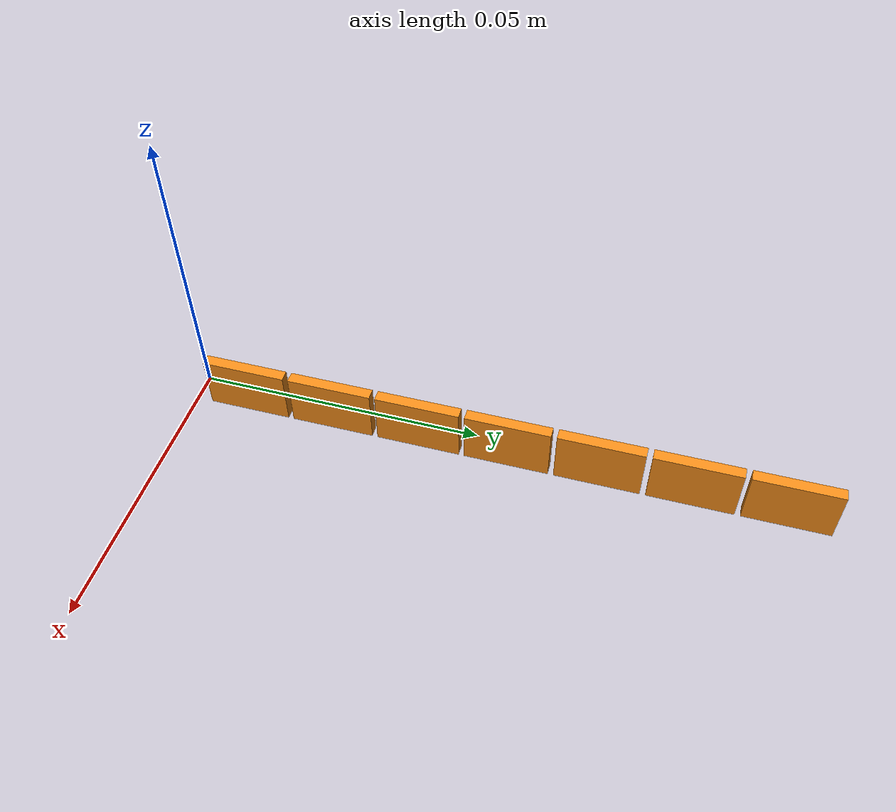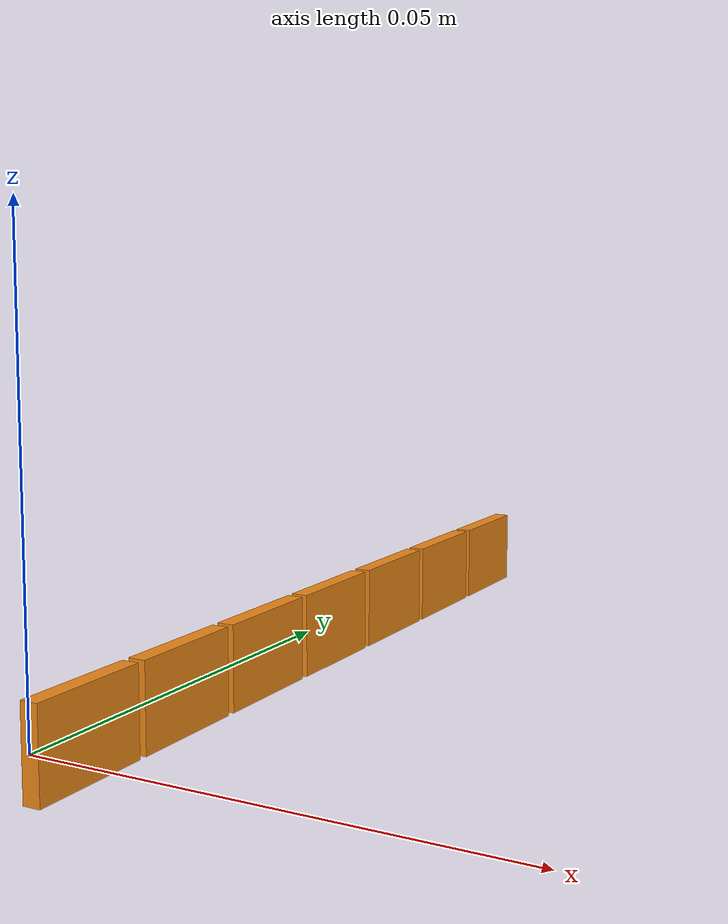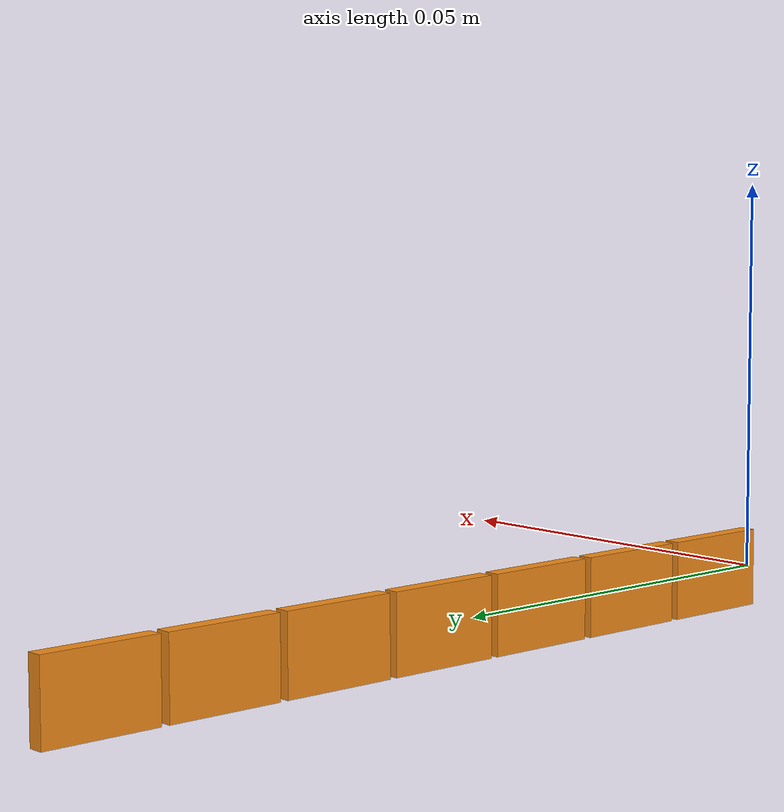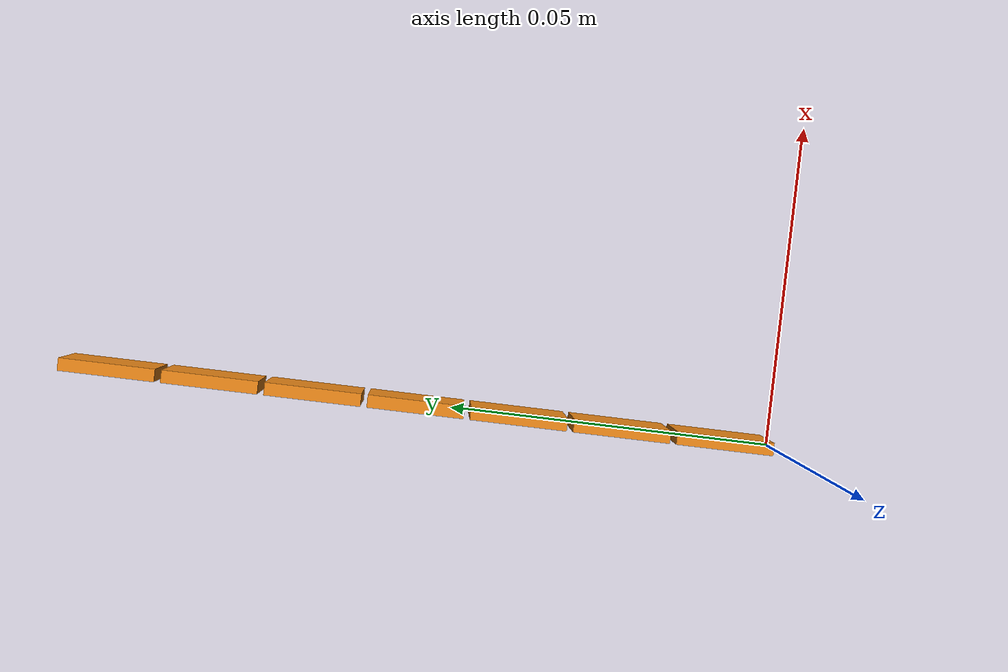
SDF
<?xml version='1.0'?>
	<sdf version='1.6'>
	  <model name='rubber_rope'>
<!-- SEGMENT 0 -->
	<link name='link_hook_0'>
	  <gravity>false</gravity>
	  <pose frame=''>0 0.0 -0 0 -0 0</pose>
	  <inertial>
	    <mass>0.0001</mass>
	    <inertia>
	      <ixx>4e-11</ixx>
	      <ixy>0</ixy>
	      <ixz>0</ixz>
	      <iyy>4e-11</iyy>
	      <iyz>0</iyz>
	      <izz>4e-11</izz>
	    </inertia>
	    <pose frame=''>0 0 0 0 -0 0</pose>
	  </inertial>
	  <self_collide>0</self_collide>
	  <kinematic>0</kinematic>
	</link>
	<joint name='joint_pri_s0_h0' type='prismatic'>
	  <parent>link_hook_0</parent>
	  <child>link_segment_0</child>
	  <pose frame=''>0 0 0 0 -0 0</pose>
	  <axis>
	    <xyz>0 1 0</xyz>
	    <use_parent_model_frame>0</use_parent_model_frame>
	    <limit>
	      <lower>0</lower>
	      <upper>0.05</upper>
	      <effort>-1</effort>
	      <velocity>-1</velocity>
	    </limit>
	    <dynamics>
	      <spring_reference>0</spring_reference>
	      <spring_stiffness>12.0</spring_stiffness>
	      <damping>4.0</damping>
	      <friction>0</friction>
	    </dynamics>
	  </axis>
	  <physics>
	    <provide_feedback>true</provide_feedback>
	    <ode>
	      <implicit_spring_damper>true</implicit_spring_damper>
	      <limit>
	        <cfm>0</cfm>
	        <erp>0.2</erp>
	      </limit>
	      <suspension>
	        <cfm>0</cfm>
	        <erp>0.2</erp>
	      </suspension>
	    </ode>
	  </physics>
	</joint>
	<link name='link_segment_0'>
	  <pose frame=''>0 0.0075 -0 0 -0 0</pose>
	  <inertial>
	    <mass>0.0001</mass>
	    <inertia>
	      <ixx>2.9e-09</ixx>
	      <ixy>0</ixy>
	      <ixz>0</ixz>
	      <iyy>1.1e-09</iyy>
	      <iyz>0</iyz>
	      <izz>1.9e-09</izz>
	    </inertia>
	    <pose frame=''>0 0 0 0 -0 0</pose>
	  </inertial>
	  <self_collide>1</self_collide>
	  <kinematic>0</kinematic>
	  <visual name='visual'>
	    <pose frame=''>0 0 0 0 -0 0</pose>
	    <geometry>
	      <box>
	        <size>0.002 0.015 0.01</size>
	      </box>
	    </geometry>
	    <material>
	      <lighting>1</lighting>
	      <script>
	        <uri>file://media/materials/scripts/gazebo.material</uri>
	        <name>Gazebo/Orange</name>
	      </script>
	    </material>
	    <transparency>0</transparency>
	    <cast_shadows>1</cast_shadows>
	  </visual>
	  <collision name='collision'>
	    <laser_retro>0</laser_retro>
	    <max_contacts>10</max_contacts>
	    <pose frame=''>0 0 0 0 -0 0</pose>
	    <geometry>
	      <box>
	        <size>0.002 0.015 0.01</size>
	      </box>
	    </geometry>
	    <surface>
	      <friction>
	        <ode>
	          <mu>2</mu>
	          <mu2>2</mu2>
	          <fdir1>0 0 0</fdir1>
	          <slip1>0</slip1>
	          <slip2>0</slip2>
	        </ode>
	        <torsional>
	          <coefficient>1</coefficient>
	          <patch_radius>0</patch_radius>
	          <surface_radius>0</surface_radius>
	          <use_patch_radius>1</use_patch_radius>
	          <ode>
	            <slip>0</slip>
	          </ode>
	        </torsional>
	      </friction>
	      <bounce>
	        <restitution_coefficient>0</restitution_coefficient>
	        <threshold>1e+06</threshold>
	      </bounce>
	      <contact>
	        <collide_without_contact>0</collide_without_contact>
	        <collide_without_contact_bitmask>1</collide_without_contact_bitmask>
	        <collide_bitmask>1</collide_bitmask>
	        <ode>
	          <soft_cfm>0</soft_cfm>
	          <soft_erp>0.2</soft_erp>
	          <kp>1e+13</kp>
	          <kd>1</kd>
	          <max_vel>0.01</max_vel>
	          <min_depth>0</min_depth>
	        </ode>
	        <bullet>
	          <split_impulse>1</split_impulse>
	          <split_impulse_penetration_threshold>-0.01</split_impulse_penetration_threshold>
	          <soft_cfm>0</soft_cfm>
	          <soft_erp>0.2</soft_erp>
	          <kp>1e+13</kp>
	          <kd>1</kd>
	        </bullet>
	      </contact>
	    </surface>
	  </collision>
	</link>
<!-- SEGMENT 1 -->
	<joint name='joint_rev_s0_h1' type='revolute2'>
	  <parent>link_segment_0</parent>
	  <child>link_hook_1</child>
	  <pose frame=''>0 0 0 0 -0 0</pose>
	  <axis>
	    <xyz>1 0 0</xyz>
	    <use_parent_model_frame>0</use_parent_model_frame>
	    <limit>
	      <lower>-0.0523599</lower>
	      <upper>0.0523599</upper>
	      <effort>-1</effort>
	      <velocity>-1</velocity>
	    </limit>
	    <dynamics>
	      <spring_reference>0</spring_reference>
	      <spring_stiffness>0.1</spring_stiffness>
	      <damping>0</damping>
	      <friction>0</friction>
	    </dynamics>
	  </axis>
	  <axis2>
	    <xyz>0 0 1</xyz>
	    <use_parent_model_frame>0</use_parent_model_frame>
	    <dynamics>
	      <spring_reference>0</spring_reference>
	      <spring_stiffness>0.1</spring_stiffness>
	      <damping>0.01</damping>
	      <friction>0</friction>
	    </dynamics>
	    <limit>
	      <lower>-0.06</lower>
	      <upper>0.06</upper>
	      <effort>-1</effort>
	      <velocity>-1</velocity>
	    </limit>
	  </axis2>
	  <physics>
	    <provide_feedback>true</provide_feedback>
	    <ode>
	      <implicit_spring_damper>true</implicit_spring_damper>
	      <cfm_damping>true</cfm_damping>
	      <limit>
	        <cfm>0.01</cfm>
	        <erp>0.2</erp>
	      </limit>
	      <suspension>
	        <cfm>0.01</cfm>
	        <erp>0.2</erp>
	      </suspension>
	    </ode>
	  </physics>
	</joint>
<!-- SEGMENT 1 -->
	<link name='link_hook_1'>
	  <gravity>false</gravity>
	  <pose frame=''>0 0.016 -0 0 -0 0</pose>
	  <inertial>
	    <mass>0.0001</mass>
	    <inertia>
	      <ixx>4e-11</ixx>
	      <ixy>0</ixy>
	      <ixz>0</ixz>
	      <iyy>4e-11</iyy>
	      <iyz>0</iyz>
	      <izz>4e-11</izz>
	    </inertia>
	    <pose frame=''>0 0 0 0 -0 0</pose>
	  </inertial>
	  <self_collide>0</self_collide>
	  <kinematic>0</kinematic>
	</link>
	<joint name='joint_pri_s1_h1' type='prismatic'>
	  <parent>link_hook_1</parent>
	  <child>link_segment_1</child>
	  <pose frame=''>0 0 0 0 -0 0</pose>
	  <axis>
	    <xyz>0 1 0</xyz>
	    <use_parent_model_frame>0</use_parent_model_frame>
	    <limit>
	      <lower>0</lower>
	      <upper>0.05</upper>
	      <effort>-1</effort>
	      <velocity>-1</velocity>
	    </limit>
	    <dynamics>
	      <spring_reference>0</spring_reference>
	      <spring_stiffness>12.0</spring_stiffness>
	      <damping>4.0</damping>
	      <friction>0</friction>
	    </dynamics>
	  </axis>
	  <physics>
	    <provide_feedback>true</provide_feedback>
	    <ode>
	      <implicit_spring_damper>true</implicit_spring_damper>
	      <limit>
	        <cfm>0</cfm>
	        <erp>0.2</erp>
	      </limit>
	      <suspension>
	        <cfm>0</cfm>
	        <erp>0.2</erp>
	      </suspension>
	    </ode>
	  </physics>
	</joint>
	<link name='link_segment_1'>
	  <pose frame=''>0 0.0235 -0 0 -0 0</pose>
	  <inertial>
	    <mass>0.0001</mass>
	    <inertia>
	      <ixx>2.9e-09</ixx>
	      <ixy>0</ixy>
	      <ixz>0</ixz>
	      <iyy>1.1e-09</iyy>
	      <iyz>0</iyz>
	      <izz>1.9e-09</izz>
	    </inertia>
	    <pose frame=''>0 0 0 0 -0 0</pose>
	  </inertial>
	  <self_collide>1</self_collide>
	  <kinematic>0</kinematic>
	  <visual name='visual'>
	    <pose frame=''>0 0 0 0 -0 0</pose>
	    <geometry>
	      <box>
	        <size>0.002 0.015 0.01</size>
	      </box>
	    </geometry>
	    <material>
	      <lighting>1</lighting>
	      <script>
	        <uri>file://media/materials/scripts/gazebo.material</uri>
	        <name>Gazebo/Orange</name>
	      </script>
	    </material>
	    <transparency>0</transparency>
	    <cast_shadows>1</cast_shadows>
	  </visual>
	  <collision name='collision'>
	    <laser_retro>0</laser_retro>
	    <max_contacts>10</max_contacts>
	    <pose frame=''>0 0 0 0 -0 0</pose>
	    <geometry>
	      <box>
	        <size>0.002 0.015 0.01</size>
	      </box>
	    </geometry>
	    <surface>
	      <friction>
	        <ode>
	          <mu>2</mu>
	          <mu2>2</mu2>
	          <fdir1>0 0 0</fdir1>
	          <slip1>0</slip1>
	          <slip2>0</slip2>
	        </ode>
	        <torsional>
	          <coefficient>1</coefficient>
	          <patch_radius>0</patch_radius>
	          <surface_radius>0</surface_radius>
	          <use_patch_radius>1</use_patch_radius>
	          <ode>
	            <slip>0</slip>
	          </ode>
	        </torsional>
	      </friction>
	      <bounce>
	        <restitution_coefficient>0</restitution_coefficient>
	        <threshold>1e+06</threshold>
	      </bounce>
	      <contact>
	        <collide_without_contact>0</collide_without_contact>
	        <collide_without_contact_bitmask>1</collide_without_contact_bitmask>
	        <collide_bitmask>1</collide_bitmask>
	        <ode>
	          <soft_cfm>0</soft_cfm>
	          <soft_erp>0.2</soft_erp>
	          <kp>1e+13</kp>
	          <kd>1</kd>
	          <max_vel>0.01</max_vel>
	          <min_depth>0</min_depth>
	        </ode>
	        <bullet>
	          <split_impulse>1</split_impulse>
	          <split_impulse_penetration_threshold>-0.01</split_impulse_penetration_threshold>
	          <soft_cfm>0</soft_cfm>
	          <soft_erp>0.2</soft_erp>
	          <kp>1e+13</kp>
	          <kd>1</kd>
	        </bullet>
	      </contact>
	    </surface>
	  </collision>
	</link>
<!-- SEGMENT 2 -->
	<joint name='joint_rev_s1_h2' type='revolute2'>
	  <parent>link_segment_1</parent>
	  <child>link_hook_2</child>
	  <pose frame=''>0 0 0 0 -0 0</pose>
	  <axis>
	    <xyz>1 0 0</xyz>
	    <use_parent_model_frame>0</use_parent_model_frame>
	    <limit>
	      <lower>-0.0523599</lower>
	      <upper>0.0523599</upper>
	      <effort>-1</effort>
	      <velocity>-1</velocity>
	    </limit>
	    <dynamics>
	      <spring_reference>0</spring_reference>
	      <spring_stiffness>0.1</spring_stiffness>
	      <damping>0</damping>
	      <friction>0</friction>
	    </dynamics>
	  </axis>
	  <axis2>
	    <xyz>0 0 1</xyz>
	    <use_parent_model_frame>0</use_parent_model_frame>
	    <dynamics>
	      <spring_reference>0</spring_reference>
	      <spring_stiffness>0.1</spring_stiffness>
	      <damping>0.01</damping>
	      <friction>0</friction>
	    </dynamics>
	    <limit>
	      <lower>-0.06</lower>
	      <upper>0.06</upper>
	      <effort>-1</effort>
	      <velocity>-1</velocity>
	    </limit>
	  </axis2>
	  <physics>
	    <provide_feedback>true</provide_feedback>
	    <ode>
	      <implicit_spring_damper>true</implicit_spring_damper>
	      <cfm_damping>true</cfm_damping>
	      <limit>
	        <cfm>0.01</cfm>
	        <erp>0.2</erp>
	      </limit>
	      <suspension>
	        <cfm>0.01</cfm>
	        <erp>0.2</erp>
	      </suspension>
	    </ode>
	  </physics>
	</joint>
<!-- SEGMENT 2 -->
	<link name='link_hook_2'>
	  <gravity>false</gravity>
	  <pose frame=''>0 0.032 -0 0 -0 0</pose>
	  <inertial>
	    <mass>0.0001</mass>
	    <inertia>
	      <ixx>4e-11</ixx>
	      <ixy>0</ixy>
	      <ixz>0</ixz>
	      <iyy>4e-11</iyy>
	      <iyz>0</iyz>
	      <izz>4e-11</izz>
	    </inertia>
	    <pose frame=''>0 0 0 0 -0 0</pose>
	  </inertial>
	  <self_collide>0</self_collide>
	  <kinematic>0</kinematic>
	</link>
	<joint name='joint_pri_s2_h2' type='prismatic'>
	  <parent>link_hook_2</parent>
	  <child>link_segment_2</child>
	  <pose frame=''>0 0 0 0 -0 0</pose>
	  <axis>
	    <xyz>0 1 0</xyz>
	    <use_parent_model_frame>0</use_parent_model_frame>
	    <limit>
	      <lower>0</lower>
	      <upper>0.05</upper>
	      <effort>-1</effort>
	      <velocity>-1</velocity>
	    </limit>
	    <dynamics>
	      <spring_reference>0</spring_reference>
	      <spring_stiffness>12.0</spring_stiffness>
	      <damping>4.0</damping>
	      <friction>0</friction>
	    </dynamics>
	  </axis>
	  <physics>
	    <provide_feedback>true</provide_feedback>
	    <ode>
	      <implicit_spring_damper>true</implicit_spring_damper>
	      <limit>
	        <cfm>0</cfm>
	        <erp>0.2</erp>
	      </limit>
	      <suspension>
	        <cfm>0</cfm>
	        <erp>0.2</erp>
	      </suspension>
	    </ode>
	  </physics>
	</joint>
	<link name='link_segment_2'>
	  <pose frame=''>0 0.0395 -0 0 -0 0</pose>
	  <inertial>
	    <mass>0.0001</mass>
	    <inertia>
	      <ixx>2.9e-09</ixx>
	      <ixy>0</ixy>
	      <ixz>0</ixz>
	      <iyy>1.1e-09</iyy>
	      <iyz>0</iyz>
	      <izz>1.9e-09</izz>
	    </inertia>
	    <pose frame=''>0 0 0 0 -0 0</pose>
	  </inertial>
	  <self_collide>1</self_collide>
	  <kinematic>0</kinematic>
	  <visual name='visual'>
	    <pose frame=''>0 0 0 0 -0 0</pose>
	    <geometry>
	      <box>
	        <size>0.002 0.015 0.01</size>
	      </box>
	    </geometry>
	    <material>
	      <lighting>1</lighting>
	      <script>
	        <uri>file://media/materials/scripts/gazebo.material</uri>
	        <name>Gazebo/Orange</name>
	      </script>
	    </material>
	    <transparency>0</transparency>
	    <cast_shadows>1</cast_shadows>
	  </visual>
	  <collision name='collision'>
	    <laser_retro>0</laser_retro>
	    <max_contacts>10</max_contacts>
	    <pose frame=''>0 0 0 0 -0 0</pose>
	    <geometry>
	      <box>
	        <size>0.002 0.015 0.01</size>
	      </box>
	    </geometry>
	    <surface>
	      <friction>
	        <ode>
	          <mu>2</mu>
	          <mu2>2</mu2>
	          <fdir1>0 0 0</fdir1>
	          <slip1>0</slip1>
	          <slip2>0</slip2>
	        </ode>
	        <torsional>
	          <coefficient>1</coefficient>
	          <patch_radius>0</patch_radius>
	          <surface_radius>0</surface_radius>
	          <use_patch_radius>1</use_patch_radius>
	          <ode>
	            <slip>0</slip>
	          </ode>
	        </torsional>
	      </friction>
	      <bounce>
	        <restitution_coefficient>0</restitution_coefficient>
	        <threshold>1e+06</threshold>
	      </bounce>
	      <contact>
	        <collide_without_contact>0</collide_without_contact>
	        <collide_without_contact_bitmask>1</collide_without_contact_bitmask>
	        <collide_bitmask>1</collide_bitmask>
	        <ode>
	          <soft_cfm>0</soft_cfm>
	          <soft_erp>0.2</soft_erp>
	          <kp>1e+13</kp>
	          <kd>1</kd>
	          <max_vel>0.01</max_vel>
	          <min_depth>0</min_depth>
	        </ode>
	        <bullet>
	          <split_impulse>1</split_impulse>
	          <split_impulse_penetration_threshold>-0.01</split_impulse_penetration_threshold>
	          <soft_cfm>0</soft_cfm>
	          <soft_erp>0.2</soft_erp>
	          <kp>1e+13</kp>
	          <kd>1</kd>
	        </bullet>
	      </contact>
	    </surface>
	  </collision>
	</link>
<!-- SEGMENT 3 -->
	<joint name='joint_rev_s2_h3' type='revolute2'>
	  <parent>link_segment_2</parent>
	  <child>link_hook_3</child>
	  <pose frame=''>0 0 0 0 -0 0</pose>
	  <axis>
	    <xyz>1 0 0</xyz>
	    <use_parent_model_frame>0</use_parent_model_frame>
	    <limit>
	      <lower>-0.0523599</lower>
	      <upper>0.0523599</upper>
	      <effort>-1</effort>
	      <velocity>-1</velocity>
	    </limit>
	    <dynamics>
	      <spring_reference>0</spring_reference>
	      <spring_stiffness>0.1</spring_stiffness>
	      <damping>0</damping>
	      <friction>0</friction>
	    </dynamics>
	  </axis>
	  <axis2>
	    <xyz>0 0 1</xyz>
	    <use_parent_model_frame>0</use_parent_model_frame>
	    <dynamics>
	      <spring_reference>0</spring_reference>
	      <spring_stiffness>0.1</spring_stiffness>
	      <damping>0.01</damping>
	      <friction>0</friction>
	    </dynamics>
	    <limit>
	      <lower>-0.06</lower>
	      <upper>0.06</upper>
	      <effort>-1</effort>
	      <velocity>-1</velocity>
	    </limit>
	  </axis2>
	  <physics>
	    <provide_feedback>true</provide_feedback>
	    <ode>
	      <implicit_spring_damper>true</implicit_spring_damper>
	      <cfm_damping>true</cfm_damping>
	      <limit>
	        <cfm>0.01</cfm>
	        <erp>0.2</erp>
	      </limit>
	      <suspension>
	        <cfm>0.01</cfm>
	        <erp>0.2</erp>
	      </suspension>
	    </ode>
	  </physics>
	</joint>
<!-- SEGMENT 3 -->
	<link name='link_hook_3'>
	  <gravity>false</gravity>
	  <pose frame=''>0 0.048 -0 0 -0 0</pose>
	  <inertial>
	    <mass>0.0001</mass>
	    <inertia>
	      <ixx>4e-11</ixx>
	      <ixy>0</ixy>
	      <ixz>0</ixz>
	      <iyy>4e-11</iyy>
	      <iyz>0</iyz>
	      <izz>4e-11</izz>
	    </inertia>
	    <pose frame=''>0 0 0 0 -0 0</pose>
	  </inertial>
	  <self_collide>0</self_collide>
	  <kinematic>0</kinematic>
	</link>
	<joint name='joint_pri_s3_h3' type='prismatic'>
	  <parent>link_hook_3</parent>
	  <child>link_segment_3</child>
	  <pose frame=''>0 0 0 0 -0 0</pose>
	  <axis>
	    <xyz>0 1 0</xyz>
	    <use_parent_model_frame>0</use_parent_model_frame>
	    <limit>
	      <lower>0</lower>
	      <upper>0.05</upper>
	      <effort>-1</effort>
	      <velocity>-1</velocity>
	    </limit>
	    <dynamics>
	      <spring_reference>0</spring_reference>
	      <spring_stiffness>12.0</spring_stiffness>
	      <damping>4.0</damping>
	      <friction>0</friction>
	    </dynamics>
	  </axis>
	  <physics>
	    <provide_feedback>true</provide_feedback>
	    <ode>
	      <implicit_spring_damper>true</implicit_spring_damper>
	      <limit>
	        <cfm>0</cfm>
	        <erp>0.2</erp>
	      </limit>
	      <suspension>
	        <cfm>0</cfm>
	        <erp>0.2</erp>
	      </suspension>
	    </ode>
	  </physics>
	</joint>
	<link name='link_segment_3'>
	  <pose frame=''>0 0.0555 -0 0 -0 0</pose>
	  <inertial>
	    <mass>0.0001</mass>
	    <inertia>
	      <ixx>2.9e-09</ixx>
	      <ixy>0</ixy>
	      <ixz>0</ixz>
	      <iyy>1.1e-09</iyy>
	      <iyz>0</iyz>
	      <izz>1.9e-09</izz>
	    </inertia>
	    <pose frame=''>0 0 0 0 -0 0</pose>
	  </inertial>
	  <self_collide>1</self_collide>
	  <kinematic>0</kinematic>
	  <visual name='visual'>
	    <pose frame=''>0 0 0 0 -0 0</pose>
	    <geometry>
	      <box>
	        <size>0.002 0.015 0.01</size>
	      </box>
	    </geometry>
	    <material>
	      <lighting>1</lighting>
	      <script>
	        <uri>file://media/materials/scripts/gazebo.material</uri>
	        <name>Gazebo/Orange</name>
	      </script>
	    </material>
	    <transparency>0</transparency>
	    <cast_shadows>1</cast_shadows>
	  </visual>
	  <collision name='collision'>
	    <laser_retro>0</laser_retro>
	    <max_contacts>10</max_contacts>
	    <pose frame=''>0 0 0 0 -0 0</pose>
	    <geometry>
	      <box>
	        <size>0.002 0.015 0.01</size>
	      </box>
	    </geometry>
	    <surface>
	      <friction>
	        <ode>
	          <mu>2</mu>
	          <mu2>2</mu2>
	          <fdir1>0 0 0</fdir1>
	          <slip1>0</slip1>
	          <slip2>0</slip2>
	        </ode>
	        <torsional>
	          <coefficient>1</coefficient>
	          <patch_radius>0</patch_radius>
	          <surface_radius>0</surface_radius>
	          <use_patch_radius>1</use_patch_radius>
	          <ode>
	            <slip>0</slip>
	          </ode>
	        </torsional>
	      </friction>
	      <bounce>
	        <restitution_coefficient>0</restitution_coefficient>
	        <threshold>1e+06</threshold>
	      </bounce>
	      <contact>
	        <collide_without_contact>0</collide_without_contact>
	        <collide_without_contact_bitmask>1</collide_without_contact_bitmask>
	        <collide_bitmask>1</collide_bitmask>
	        <ode>
	          <soft_cfm>0</soft_cfm>
	          <soft_erp>0.2</soft_erp>
	          <kp>1e+13</kp>
	          <kd>1</kd>
	          <max_vel>0.01</max_vel>
	          <min_depth>0</min_depth>
	        </ode>
	        <bullet>
	          <split_impulse>1</split_impulse>
	          <split_impulse_penetration_threshold>-0.01</split_impulse_penetration_threshold>
	          <soft_cfm>0</soft_cfm>
	          <soft_erp>0.2</soft_erp>
	          <kp>1e+13</kp>
	          <kd>1</kd>
	        </bullet>
	      </contact>
	    </surface>
	  </collision>
	</link>
<!-- SEGMENT 4 -->
	<joint name='joint_rev_s3_h4' type='revolute2'>
	  <parent>link_segment_3</parent>
	  <child>link_hook_4</child>
	  <pose frame=''>0 0 0 0 -0 0</pose>
	  <axis>
	    <xyz>1 0 0</xyz>
	    <use_parent_model_frame>0</use_parent_model_frame>
	    <limit>
	      <lower>-0.0523599</lower>
	      <upper>0.0523599</upper>
	      <effort>-1</effort>
	      <velocity>-1</velocity>
	    </limit>
	    <dynamics>
	      <spring_reference>0</spring_reference>
	      <spring_stiffness>0.1</spring_stiffness>
	      <damping>0</damping>
	      <friction>0</friction>
	    </dynamics>
	  </axis>
	  <axis2>
	    <xyz>0 0 1</xyz>
	    <use_parent_model_frame>0</use_parent_model_frame>
	    <dynamics>
	      <spring_reference>0</spring_reference>
	      <spring_stiffness>0.1</spring_stiffness>
	      <damping>0.01</damping>
	      <friction>0</friction>
	    </dynamics>
	    <limit>
	      <lower>-0.06</lower>
	      <upper>0.06</upper>
	      <effort>-1</effort>
	      <velocity>-1</velocity>
	    </limit>
	  </axis2>
	  <physics>
	    <provide_feedback>true</provide_feedback>
	    <ode>
	      <implicit_spring_damper>true</implicit_spring_damper>
	      <cfm_damping>true</cfm_damping>
	      <limit>
	        <cfm>0.01</cfm>
	        <erp>0.2</erp>
	      </limit>
	      <suspension>
	        <cfm>0.01</cfm>
	        <erp>0.2</erp>
	      </suspension>
	    </ode>
	  </physics>
	</joint>
<!-- SEGMENT 4 -->
	<link name='link_hook_4'>
	  <gravity>false</gravity>
	  <pose frame=''>0 0.064 -0 0 -0 0</pose>
	  <inertial>
	    <mass>0.0001</mass>
	    <inertia>
	      <ixx>4e-11</ixx>
	      <ixy>0</ixy>
	      <ixz>0</ixz>
	      <iyy>4e-11</iyy>
	      <iyz>0</iyz>
	      <izz>4e-11</izz>
	    </inertia>
	    <pose frame=''>0 0 0 0 -0 0</pose>
	  </inertial>
	  <self_collide>0</self_collide>
	  <kinematic>0</kinematic>
	</link>
	<joint name='joint_pri_s4_h4' type='prismatic'>
	  <parent>link_hook_4</parent>
	  <child>link_segment_4</child>
	  <pose frame=''>0 0 0 0 -0 0</pose>
	  <axis>
	    <xyz>0 1 0</xyz>
	    <use_parent_model_frame>0</use_parent_model_frame>
	    <limit>
	      <lower>0</lower>
	      <upper>0.05</upper>
	      <effort>-1</effort>
	      <velocity>-1</velocity>
	    </limit>
	    <dynamics>
	      <spring_reference>0</spring_reference>
	      <spring_stiffness>12.0</spring_stiffness>
	      <damping>4.0</damping>
	      <friction>0</friction>
	    </dynamics>
	  </axis>
	  <physics>
	    <provide_feedback>true</provide_feedback>
	    <ode>
	      <implicit_spring_damper>true</implicit_spring_damper>
	      <limit>
	        <cfm>0</cfm>
	        <erp>0.2</erp>
	      </limit>
	      <suspension>
	        <cfm>0</cfm>
	        <erp>0.2</erp>
	      </suspension>
	    </ode>
	  </physics>
	</joint>
	<link name='link_segment_4'>
	  <pose frame=''>0 0.0715 -0 0 -0 0</pose>
	  <inertial>
	    <mass>0.0001</mass>
	    <inertia>
	      <ixx>2.9e-09</ixx>
	      <ixy>0</ixy>
	      <ixz>0</ixz>
	      <iyy>1.1e-09</iyy>
	      <iyz>0</iyz>
	      <izz>1.9e-09</izz>
	    </inertia>
	    <pose frame=''>0 0 0 0 -0 0</pose>
	  </inertial>
	  <self_collide>1</self_collide>
	  <kinematic>0</kinematic>
	  <visual name='visual'>
	    <pose frame=''>0 0 0 0 -0 0</pose>
	    <geometry>
	      <box>
	        <size>0.002 0.015 0.01</size>
	      </box>
	    </geometry>
	    <material>
	      <lighting>1</lighting>
	      <script>
	        <uri>file://media/materials/scripts/gazebo.material</uri>
	        <name>Gazebo/Orange</name>
	      </script>
	    </material>
	    <transparency>0</transparency>
	    <cast_shadows>1</cast_shadows>
	  </visual>
	  <collision name='collision'>
	    <laser_retro>0</laser_retro>
	    <max_contacts>10</max_contacts>
	    <pose frame=''>0 0 0 0 -0 0</pose>
	    <geometry>
	      <box>
	        <size>0.002 0.015 0.01</size>
	      </box>
	    </geometry>
	    <surface>
	      <friction>
	        <ode>
	          <mu>2</mu>
	          <mu2>2</mu2>
	          <fdir1>0 0 0</fdir1>
	          <slip1>0</slip1>
	          <slip2>0</slip2>
	        </ode>
	        <torsional>
	          <coefficient>1</coefficient>
	          <patch_radius>0</patch_radius>
	          <surface_radius>0</surface_radius>
	          <use_patch_radius>1</use_patch_radius>
	          <ode>
	            <slip>0</slip>
	          </ode>
	        </torsional>
	      </friction>
	      <bounce>
	        <restitution_coefficient>0</restitution_coefficient>
	        <threshold>1e+06</threshold>
	      </bounce>
	      <contact>
	        <collide_without_contact>0</collide_without_contact>
	        <collide_without_contact_bitmask>1</collide_without_contact_bitmask>
	        <collide_bitmask>1</collide_bitmask>
	        <ode>
	          <soft_cfm>0</soft_cfm>
	          <soft_erp>0.2</soft_erp>
	          <kp>1e+13</kp>
	          <kd>1</kd>
	          <max_vel>0.01</max_vel>
	          <min_depth>0</min_depth>
	        </ode>
	        <bullet>
	          <split_impulse>1</split_impulse>
	          <split_impulse_penetration_threshold>-0.01</split_impulse_penetration_threshold>
	          <soft_cfm>0</soft_cfm>
	          <soft_erp>0.2</soft_erp>
	          <kp>1e+13</kp>
	          <kd>1</kd>
	        </bullet>
	      </contact>
	    </surface>
	  </collision>
	</link>
<!-- SEGMENT 5 -->
	<joint name='joint_rev_s4_h5' type='revolute2'>
	  <parent>link_segment_4</parent>
	  <child>link_hook_5</child>
	  <pose frame=''>0 0 0 0 -0 0</pose>
	  <axis>
	    <xyz>1 0 0</xyz>
	    <use_parent_model_frame>0</use_parent_model_frame>
	    <limit>
	      <lower>-0.0523599</lower>
	      <upper>0.0523599</upper>
	      <effort>-1</effort>
	      <velocity>-1</velocity>
	    </limit>
	    <dynamics>
	      <spring_reference>0</spring_reference>
	      <spring_stiffness>0.1</spring_stiffness>
	      <damping>0</damping>
	      <friction>0</friction>
	    </dynamics>
	  </axis>
	  <axis2>
	    <xyz>0 0 1</xyz>
	    <use_parent_model_frame>0</use_parent_model_frame>
	    <dynamics>
	      <spring_reference>0</spring_reference>
	      <spring_stiffness>0.1</spring_stiffness>
	      <damping>0.01</damping>
	      <friction>0</friction>
	    </dynamics>
	    <limit>
	      <lower>-0.06</lower>
	      <upper>0.06</upper>
	      <effort>-1</effort>
	      <velocity>-1</velocity>
	    </limit>
	  </axis2>
	  <physics>
	    <provide_feedback>true</provide_feedback>
	    <ode>
	      <implicit_spring_damper>true</implicit_spring_damper>
	      <cfm_damping>true</cfm_damping>
	      <limit>
	        <cfm>0.01</cfm>
	        <erp>0.2</erp>
	      </limit>
	      <suspension>
	        <cfm>0.01</cfm>
	        <erp>0.2</erp>
	      </suspension>
	    </ode>
	  </physics>
	</joint>
<!-- SEGMENT 5 -->
	<link name='link_hook_5'>
	  <gravity>false</gravity>
	  <pose frame=''>0 0.08 -0 0 -0 0</pose>
	  <inertial>
	    <mass>0.0001</mass>
	    <inertia>
	      <ixx>4e-11</ixx>
	      <ixy>0</ixy>
	      <ixz>0</ixz>
	      <iyy>4e-11</iyy>
	      <iyz>0</iyz>
	      <izz>4e-11</izz>
	    </inertia>
	    <pose frame=''>0 0 0 0 -0 0</pose>
	  </inertial>
	  <self_collide>0</self_collide>
	  <kinematic>0</kinematic>
	</link>
	<joint name='joint_pri_s5_h5' type='prismatic'>
	  <parent>link_hook_5</parent>
	  <child>link_segment_5</child>
	  <pose frame=''>0 0 0 0 -0 0</pose>
	  <axis>
	    <xyz>0 1 0</xyz>
	    <use_parent_model_frame>0</use_parent_model_frame>
	    <limit>
	      <lower>0</lower>
	      <upper>0.05</upper>
	      <effort>-1</effort>
	      <velocity>-1</velocity>
	    </limit>
	    <dynamics>
	      <spring_reference>0</spring_reference>
	      <spring_stiffness>12.0</spring_stiffness>
	      <damping>4.0</damping>
	      <friction>0</friction>
	    </dynamics>
	  </axis>
	  <physics>
	    <provide_feedback>true</provide_feedback>
	    <ode>
	      <implicit_spring_damper>true</implicit_spring_damper>
	      <limit>
	        <cfm>0</cfm>
	        <erp>0.2</erp>
	      </limit>
	      <suspension>
	        <cfm>0</cfm>
	        <erp>0.2</erp>
	      </suspension>
	    </ode>
	  </physics>
	</joint>
	<link name='link_segment_5'>
	  <pose frame=''>0 0.0875 -0 0 -0 0</pose>
	  <inertial>
	    <mass>0.0001</mass>
	    <inertia>
	      <ixx>2.9e-09</ixx>
	      <ixy>0</ixy>
	      <ixz>0</ixz>
	      <iyy>1.1e-09</iyy>
	      <iyz>0</iyz>
	      <izz>1.9e-09</izz>
	    </inertia>
	    <pose frame=''>0 0 0 0 -0 0</pose>
	  </inertial>
	  <self_collide>1</self_collide>
	  <kinematic>0</kinematic>
	  <visual name='visual'>
	    <pose frame=''>0 0 0 0 -0 0</pose>
	    <geometry>
	      <box>
	        <size>0.002 0.015 0.01</size>
	      </box>
	    </geometry>
	    <material>
	      <lighting>1</lighting>
	      <script>
	        <uri>file://media/materials/scripts/gazebo.material</uri>
	        <name>Gazebo/Orange</name>
	      </script>
	    </material>
	    <transparency>0</transparency>
	    <cast_shadows>1</cast_shadows>
	  </visual>
	  <collision name='collision'>
	    <laser_retro>0</laser_retro>
	    <max_contacts>10</max_contacts>
	    <pose frame=''>0 0 0 0 -0 0</pose>
	    <geometry>
	      <box>
	        <size>0.002 0.015 0.01</size>
	      </box>
	    </geometry>
	    <surface>
	      <friction>
	        <ode>
	          <mu>2</mu>
	          <mu2>2</mu2>
	          <fdir1>0 0 0</fdir1>
	          <slip1>0</slip1>
	          <slip2>0</slip2>
	        </ode>
	        <torsional>
	          <coefficient>1</coefficient>
	          <patch_radius>0</patch_radius>
	          <surface_radius>0</surface_radius>
	          <use_patch_radius>1</use_patch_radius>
	          <ode>
	            <slip>0</slip>
	          </ode>
	        </torsional>
	      </friction>
	      <bounce>
	        <restitution_coefficient>0</restitution_coefficient>
	        <threshold>1e+06</threshold>
	      </bounce>
	      <contact>
	        <collide_without_contact>0</collide_without_contact>
	        <collide_without_contact_bitmask>1</collide_without_contact_bitmask>
	        <collide_bitmask>1</collide_bitmask>
	        <ode>
	          <soft_cfm>0</soft_cfm>
	          <soft_erp>0.2</soft_erp>
	          <kp>1e+13</kp>
	          <kd>1</kd>
	          <max_vel>0.01</max_vel>
	          <min_depth>0</min_depth>
	        </ode>
	        <bullet>
	          <split_impulse>1</split_impulse>
	          <split_impulse_penetration_threshold>-0.01</split_impulse_penetration_threshold>
	          <soft_cfm>0</soft_cfm>
	          <soft_erp>0.2</soft_erp>
	          <kp>1e+13</kp>
	          <kd>1</kd>
	        </bullet>
	      </contact>
	    </surface>
	  </collision>
	</link>
<!-- SEGMENT 6 -->
	<joint name='joint_rev_s5_h6' type='revolute2'>
	  <parent>link_segment_5</parent>
	  <child>link_hook_6</child>
	  <pose frame=''>0 0 0 0 -0 0</pose>
	  <axis>
	    <xyz>1 0 0</xyz>
	    <use_parent_model_frame>0</use_parent_model_frame>
	    <limit>
	      <lower>-0.0523599</lower>
	      <upper>0.0523599</upper>
	      <effort>-1</effort>
	      <velocity>-1</velocity>
	    </limit>
	    <dynamics>
	      <spring_reference>0</spring_reference>
	      <spring_stiffness>0.1</spring_stiffness>
	      <damping>0</damping>
	      <friction>0</friction>
	    </dynamics>
	  </axis>
	  <axis2>
	    <xyz>0 0 1</xyz>
	    <use_parent_model_frame>0</use_parent_model_frame>
	    <dynamics>
	      <spring_reference>0</spring_reference>
	      <spring_stiffness>0.1</spring_stiffness>
	      <damping>0.01</damping>
	      <friction>0</friction>
	    </dynamics>
	    <limit>
	      <lower>-0.06</lower>
	      <upper>0.06</upper>
	      <effort>-1</effort>
	      <velocity>-1</velocity>
	    </limit>
	  </axis2>
	  <physics>
	    <provide_feedback>true</provide_feedback>
	    <ode>
	      <implicit_spring_damper>true</implicit_spring_damper>
	      <cfm_damping>true</cfm_damping>
	      <limit>
	        <cfm>0.01</cfm>
	        <erp>0.2</erp>
	      </limit>
	      <suspension>
	        <cfm>0.01</cfm>
	        <erp>0.2</erp>
	      </suspension>
	    </ode>
	  </physics>
	</joint>
<!-- SEGMENT 6 -->
	<link name='link_hook_6'>
	  <gravity>false</gravity>
	  <pose frame=''>0 0.096 -0 0 -0 0</pose>
	  <inertial>
	    <mass>0.0001</mass>
	    <inertia>
	      <ixx>4e-11</ixx>
	      <ixy>0</ixy>
	      <ixz>0</ixz>
	      <iyy>4e-11</iyy>
	      <iyz>0</iyz>
	      <izz>4e-11</izz>
	    </inertia>
	    <pose frame=''>0 0 0 0 -0 0</pose>
	  </inertial>
	  <self_collide>0</self_collide>
	  <kinematic>0</kinematic>
	</link>
	<joint name='joint_pri_s6_h6' type='prismatic'>
	  <parent>link_hook_6</parent>
	  <child>link_segment_6</child>
	  <pose frame=''>0 0 0 0 -0 0</pose>
	  <axis>
	    <xyz>0 1 0</xyz>
	    <use_parent_model_frame>0</use_parent_model_frame>
	    <limit>
	      <lower>0</lower>
	      <upper>0.05</upper>
	      <effort>-1</effort>
	      <velocity>-1</velocity>
	    </limit>
	    <dynamics>
	      <spring_reference>0</spring_reference>
	      <spring_stiffness>12.0</spring_stiffness>
	      <damping>4.0</damping>
	      <friction>0</friction>
	    </dynamics>
	  </axis>
	  <physics>
	    <provide_feedback>true</provide_feedback>
	    <ode>
	      <implicit_spring_damper>true</implicit_spring_damper>
	      <limit>
	        <cfm>0</cfm>
	        <erp>0.2</erp>
	      </limit>
	      <suspension>
	        <cfm>0</cfm>
	        <erp>0.2</erp>
	      </suspension>
	    </ode>
	  </physics>
	</joint>
	<link name='link_segment_6'>
	  <pose frame=''>0 0.1035 -0 0 -0 0</pose>
	  <inertial>
	    <mass>0.0001</mass>
	    <inertia>
	      <ixx>2.9e-09</ixx>
	      <ixy>0</ixy>
	      <ixz>0</ixz>
	      <iyy>1.1e-09</iyy>
	      <iyz>0</iyz>
	      <izz>1.9e-09</izz>
	    </inertia>
	    <pose frame=''>0 0 0 0 -0 0</pose>
	  </inertial>
	  <self_collide>1</self_collide>
	  <kinematic>0</kinematic>
	  <visual name='visual'>
	    <pose frame=''>0 0 0 0 -0 0</pose>
	    <geometry>
	      <box>
	        <size>0.002 0.015 0.01</size>
	      </box>
	    </geometry>
	    <material>
	      <lighting>1</lighting>
	      <script>
	        <uri>file://media/materials/scripts/gazebo.material</uri>
	        <name>Gazebo/Orange</name>
	      </script>
	    </material>
	    <transparency>0</transparency>
	    <cast_shadows>1</cast_shadows>
	  </visual>
	  <collision name='collision'>
	    <laser_retro>0</laser_retro>
	    <max_contacts>10</max_contacts>
	    <pose frame=''>0 0 0 0 -0 0</pose>
	    <geometry>
	      <box>
	        <size>0.002 0.015 0.01</size>
	      </box>
	    </geometry>
	    <surface>
	      <friction>
	        <ode>
	          <mu>2</mu>
	          <mu2>2</mu2>
	          <fdir1>0 0 0</fdir1>
	          <slip1>0</slip1>
	          <slip2>0</slip2>
	        </ode>
	        <torsional>
	          <coefficient>1</coefficient>
	          <patch_radius>0</patch_radius>
	          <surface_radius>0</surface_radius>
	          <use_patch_radius>1</use_patch_radius>
	          <ode>
	            <slip>0</slip>
	          </ode>
	        </torsional>
	      </friction>
	      <bounce>
	        <restitution_coefficient>0</restitution_coefficient>
	        <threshold>1e+06</threshold>
	      </bounce>
	      <contact>
	        <collide_without_contact>0</collide_without_contact>
	        <collide_without_contact_bitmask>1</collide_without_contact_bitmask>
	        <collide_bitmask>1</collide_bitmask>
	        <ode>
	          <soft_cfm>0</soft_cfm>
	          <soft_erp>0.2</soft_erp>
	          <kp>1e+13</kp>
	          <kd>1</kd>
	          <max_vel>0.01</max_vel>
	          <min_depth>0</min_depth>
	        </ode>
	        <bullet>
	          <split_impulse>1</split_impulse>
	          <split_impulse_penetration_threshold>-0.01</split_impulse_penetration_threshold>
	          <soft_cfm>0</soft_cfm>
	          <soft_erp>0.2</soft_erp>
	          <kp>1e+13</kp>
	          <kd>1</kd>
	        </bullet>
	      </contact>
	    </surface>
	  </collision>
	</link>
    <static>0</static>
	    <allow_auto_disable>1</allow_auto_disable>
	    <plugin name="virtual_rubber_band" filename="libcosima_gazebo_virtual_rubber_band.so"/>
	  </model>
	</sdf>
